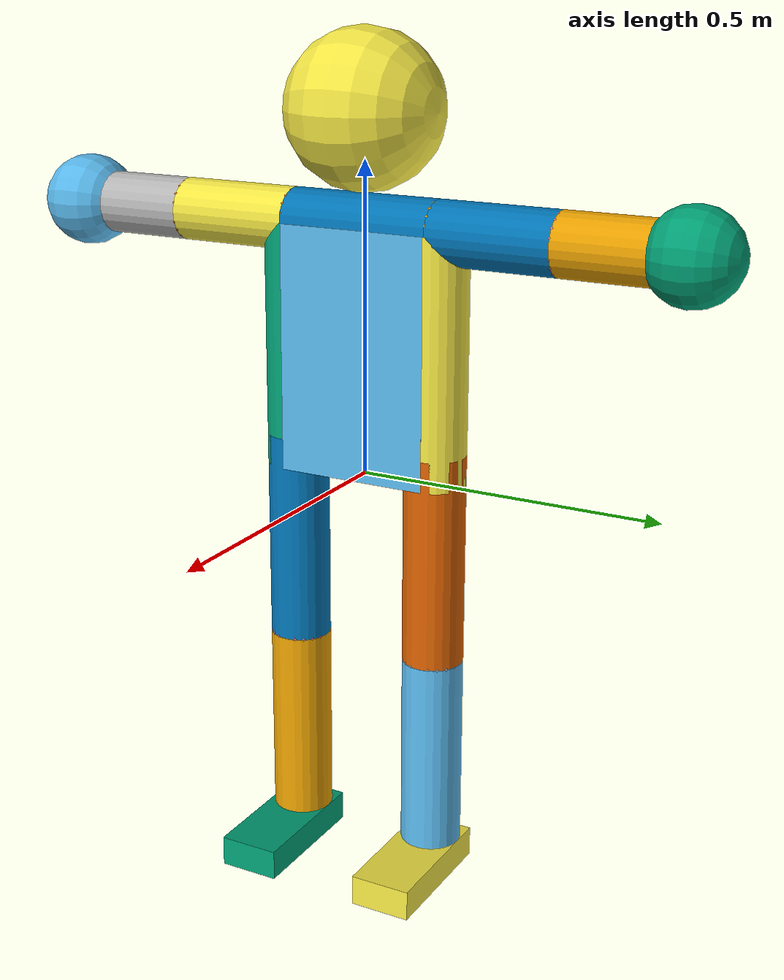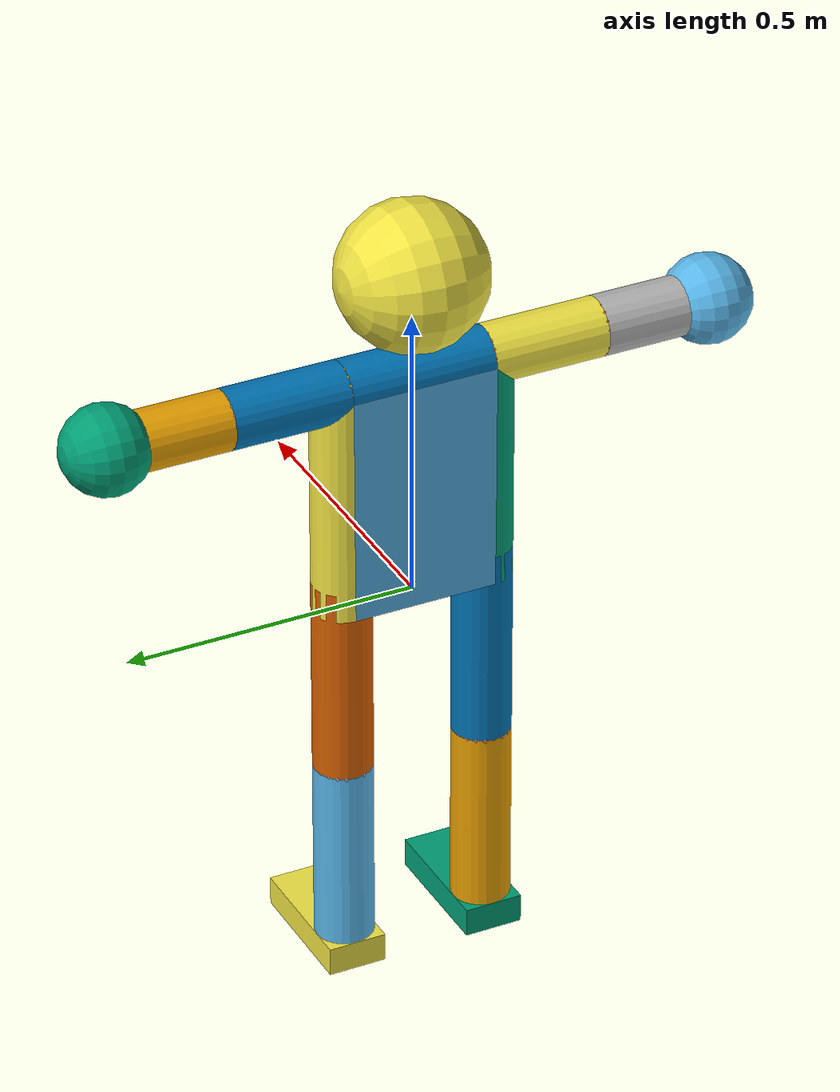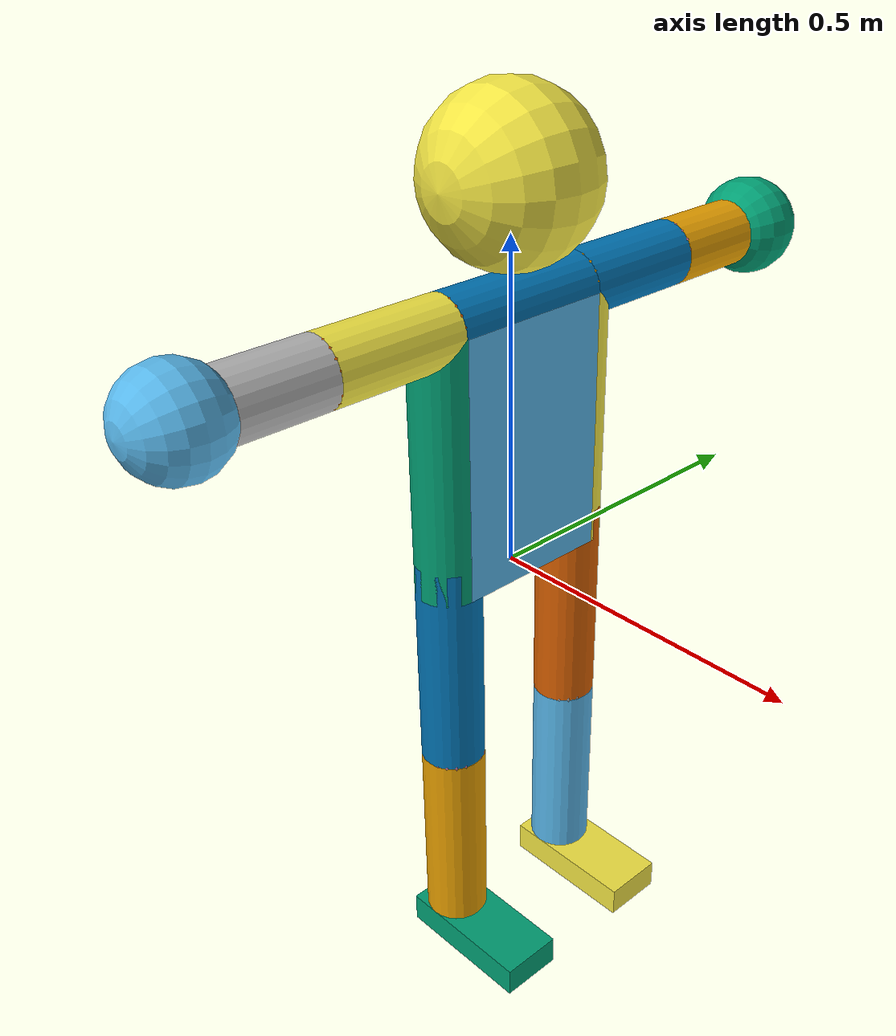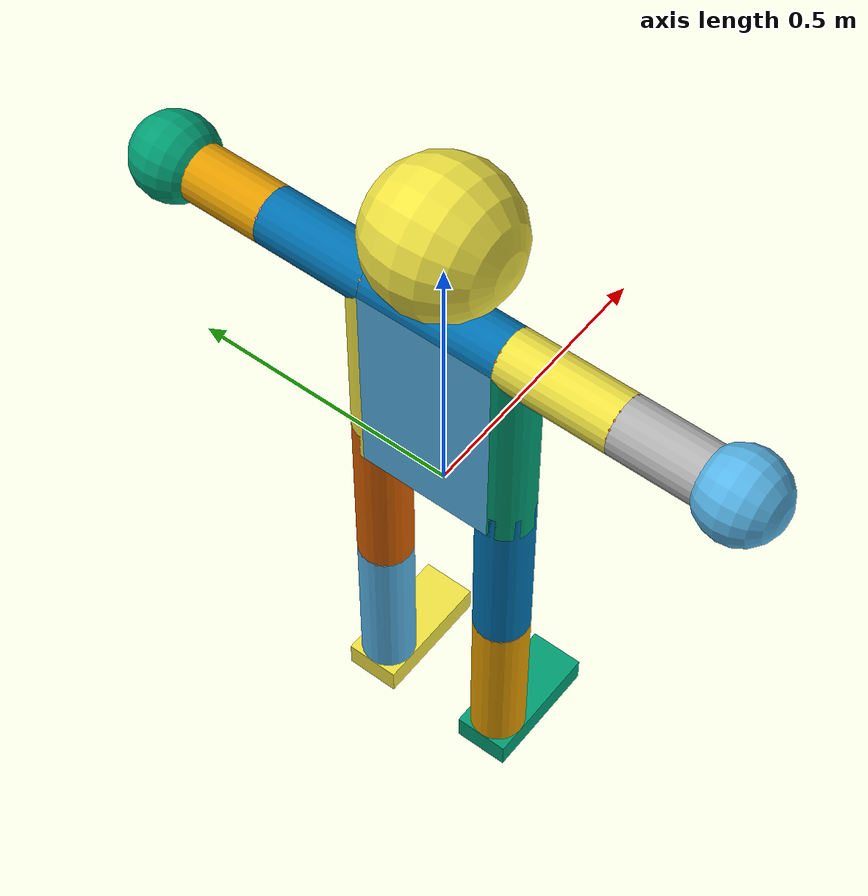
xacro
<?xml version="1.0"?>
<robot name="human" xmlns:xacro="http://www.ros.org/wiki/xacro">

  <xacro:arg name="joint_pose_file"       default="default_pose.xacro"/>
  <xacro:property name="joint_pose_file"  value="$(arg joint_pose_file)"/>
  <xacro:include filename="$(find model_human_skeleton)/urdf/${joint_pose_file}"/>

  <xacro:arg name="fixed_joint"         default="true"/>
  <xacro:property name="fixed_joint"    value="$(arg fixed_joint)"/>

  <xacro:arg name="gazebo_static"       default="true"/>
  <xacro:property name="gazebo_static"  value="$(arg gazebo_static)"/>

  <xacro:property name="model_mass" value="10"/>
  <xacro:property name="head_radius" value="0.125"/>
  <xacro:property name="body_trunk_height" value="0.4" />
  <xacro:property name="body_trunk_width" value="0.25" />
  <xacro:property name="body_trunk_depth" value="0.1"/>

  <xacro:property name="thight_length" value="0.35"/>
  <xacro:property name="calf_length" value="0.35"/>
  <xacro:property name="leg_radius" value="0.05"/>

  <xacro:property name="foot_height" value="0.05"/>
  <xacro:property name="foot_length" value="0.23"/>

  <xacro:property name="hand_diameter" value="0.15"/>
  <xacro:property name="arm_diameter" value="0.1"/>
  <xacro:property name="arm_length" value="0.2"/>
  <xacro:property name="forearm_length" value="0.2"/>

  <xacro:property name="deg_to_rad" value="0.01745329251994329577"/>

  <xacro:macro name="unit_inertia" params="mass:=1">
    <inertial>
      <origin xyz="0 0 0" rpy="0 0 0"/>
      <mass value="${mass}"/>
      <inertia ixx="${mass}" ixy="0" ixz="0" iyy="${mass}" iyz="0" izz="${mass}"/>
    </inertial>
  </xacro:macro>

  <xacro:if value="${gazebo_static}">
    <gazebo>
      <static>true</static>
    </gazebo>
  </xacro:if>

  <link name="human_base_link"/>

  <link name="body_link">
    <visual>
      <geometry>
        <box size="${body_trunk_height} ${body_trunk_width} ${body_trunk_depth}"/>
      </geometry>
    </visual>
    <collision>
      <origin xyz="0 0 0"/>
      <geometry>
        <box size="${body_trunk_height} ${body_trunk_width} ${body_trunk_depth}"/>
      </geometry>
    </collision>
    <xacro:unit_inertia mass="1"/>
  </link>
  <joint name="base_body_joint" type="fixed">
    <origin xyz="-0 0 ${body_trunk_height/2.0}" rpy="0 -1.57 0"/>
    <child link="body_link"/>
    <parent link="human_base_link"/>
  </joint>

  <link name="bodyright_link">
    <visual>
      <geometry>
        <cylinder radius="${body_trunk_depth/2}" length="${body_trunk_height}"/>
      </geometry>
    </visual>
    <collision>
      <origin xyz="0 0 0"/>
      <geometry>
        <cylinder radius="${body_trunk_depth/2}" length="${body_trunk_height}"/>
      </geometry>
    </collision>
    <xacro:unit_inertia mass="1"/>
  </link>
  <joint name="body_bodyright_joint" type="fixed">
      <origin xyz="0 -${body_trunk_width/2} 0" rpy="0 -1.57 0"/>
    <child link="bodyright_link"/>
    <parent link="body_link"/>
  </joint>

  <link name="bodyleft_link">
    <visual>
      <geometry>
        <cylinder radius="${body_trunk_depth/2}" length="${body_trunk_height}"/>
      </geometry>
    </visual>
    <collision>
      <origin xyz="0 0 0"/>
      <geometry>
        <cylinder radius="${body_trunk_depth/2}" length="${body_trunk_height}"/>
      </geometry>
    </collision>
    <xacro:unit_inertia mass="1"/>
  </link>
  <joint name="body_bodyleft_joint" type="fixed">
      <origin xyz="0 ${body_trunk_width/2} 0" rpy="0 -1.57 0"/>
    <child link="bodyleft_link"/>
    <parent link="body_link"/>
  </joint>

  <!-- thight right -->
  <link name="legright1_link">
    <visual>
      <origin xyz="0 0 ${thight_length/2}"/>
      <geometry>
        <cylinder radius="${leg_radius}" length="${thight_length}"/>
      </geometry>
    </visual>
    <collision>
      <origin xyz="0 0 ${thight_length/2}"/>
      <geometry>
       <cylinder radius="${leg_radius}" length="${thight_length}"/>
      </geometry>
    </collision>
    <xacro:unit_inertia mass="1"/>
  </link>
  <xacro:unless value="${fixed_joint}">
    <joint name="hip_right_joint" type="revolute">
      <origin xyz="0 ${leg_radius-body_trunk_depth/2} ${body_trunk_height/2-leg_radius}" rpy="0 ${hip_r_joint_angle} 0"/>
      <child link="legright1_link"/>
      <parent link="bodyright_link"/>
      <axis xyz="0.0 1.0 0.0"/>
      <limit lower="-1.57" upper="1.57" effort="1000.0" velocity="0.5"/>
    </joint>
  </xacro:unless>
  <xacro:if value="${fixed_joint}">
    <joint name="hip_right_joint" type="fixed">
      <origin xyz="0 ${leg_radius-body_trunk_depth/2} ${body_trunk_height/2-leg_radius}" rpy="0 ${hip_r_joint_angle} 0"/>
      <child link="legright1_link"/>
      <parent link="bodyright_link"/>
    </joint>
  </xacro:if>

  <!-- thight left -->
  <link name="legleft1_link">
    <visual>
      <origin xyz="0 0 ${thight_length/2}"/>
      <geometry>
        <cylinder radius="${leg_radius}" length="${thight_length}"/>
      </geometry>
    </visual>
    <collision>
      <origin xyz="0 0 ${thight_length/2}"/>
      <geometry>
       <cylinder radius="${leg_radius}" length="${thight_length}"/>
      </geometry>
    </collision>
    <xacro:unit_inertia mass="1"/>
  </link>
  <xacro:unless value="${fixed_joint}">
    <joint name="hip_left_joint" type="revolute">
      <origin xyz="0 ${-(leg_radius-body_trunk_depth/2)} ${body_trunk_height/2-leg_radius}" rpy="0 ${hip_l_joint_angle} 0"/>
      <child link="legleft1_link"/>
      <parent link="bodyleft_link"/>
      <axis xyz="0.0 1.0 0.0"/>
      <limit lower="-1.57" upper="1.57" effort="1000.0" velocity="0.5"/>
    </joint>
  </xacro:unless>
  <xacro:if value="${fixed_joint}">
    <joint name="hip_left_joint" type="fixed">
      <origin xyz="0 ${-(leg_radius-body_trunk_depth/2)} ${body_trunk_height/2-leg_radius}" rpy="0 ${hip_l_joint_angle} 0"/>
      <child link="legleft1_link"/>
      <parent link="bodyleft_link"/>
    </joint>
  </xacro:if>

  <!-- knee right -->
  <link name="legright2_link">
    <visual>
      <geometry>
        <sphere radius="${leg_radius}"/>
      </geometry>
    </visual>
    <collision>
      <geometry>
        <sphere radius="${leg_radius}"/>
      </geometry>
    </collision>
    <xacro:unit_inertia mass="1"/>
  </link>
  <xacro:unless value="${fixed_joint}">
    <joint name="knee_right_joint" type="revolute">
      <origin xyz="0 0 ${thight_length}" rpy="0 ${knee_r_joint_angle-1.57} 0"/>
      <child link="legright2_link"/>
      <parent link="legright1_link"/>
      <axis xyz="0.0 1.0 0.0"/>
      <limit lower="0" upper="${160 * deg_to_rad}" effort="1000.0" velocity="0.5"/>
    </joint>
  </xacro:unless>
  <xacro:if value="${fixed_joint}">
    <joint name="knee_right_joint" type="fixed">
      <origin xyz="0 0 ${thight_length}" rpy="0 ${knee_r_joint_angle-1.57} 0"/>
      <child link="legright2_link"/>
      <parent link="legright1_link"/>
    </joint>
  </xacro:if>

  <!-- knee left -->
  <link name="legleft2_link">
    <visual>
      <geometry>
        <sphere radius="${leg_radius}"/>
      </geometry>
    </visual>
    <collision>
      <geometry>
        <sphere radius="${leg_radius}"/>
      </geometry>
    </collision>
    <xacro:unit_inertia mass="1"/>
  </link>
  <xacro:unless value="${fixed_joint}">
    <joint name="knee_left_joint" type="revolute">
      <origin xyz="0 0 ${thight_length}" rpy="0 ${knee_l_joint_angle-1.57} 0"/>
      <child link="legleft2_link"/>
      <parent link="legleft1_link"/>
      <axis xyz="0.0 1.0 0.0"/>
      <limit lower="0" upper="${160 * deg_to_rad}" effort="1000.0" velocity="0.5"/>
    </joint>
  </xacro:unless>
  <xacro:if value="${fixed_joint}">
    <joint name="knee_left_joint" type="fixed">
      <origin xyz="0 0 ${thight_length}" rpy="0 ${knee_l_joint_angle-1.57} 0"/>
      <child link="legleft2_link"/>
      <parent link="legleft1_link"/>
    </joint>
  </xacro:if>

  <!-- calf right -->
  <link name="legright3_link">
    <visual>
      <geometry>
        <cylinder radius="${leg_radius}" length="${calf_length}"/>
      </geometry>
    </visual>
    <collision>
      <origin xyz="0 0 0"/>
      <geometry>
        <cylinder radius="${leg_radius}" length="${calf_length}"/>
      </geometry>
    </collision>
    <xacro:unit_inertia mass="1"/>
  </link>
  <joint name="calf_right_joint" type="fixed">
    <origin xyz="${calf_length/2} 0 0" rpy="0 -1.57 0"/>
    <child link="legright3_link"/>
    <parent link="legright2_link"/>
  </joint>

  <!-- calf left -->
  <link name="legleft3_link">
    <visual>
      <geometry>
        <cylinder radius="${leg_radius}" length="${calf_length}"/>
      </geometry>
    </visual>
    <collision>
      <origin xyz="0 0 0"/>
      <geometry>
        <cylinder radius="${leg_radius}" length="${calf_length}"/>
      </geometry>
    </collision>
    <xacro:unit_inertia mass="1"/>
  </link>
  <joint name="calf_left_joint" type="fixed">
    <origin xyz="${calf_length/2} 0 0" rpy="0 -1.57 0"/>
    <child link="legleft3_link"/>
    <parent link="legleft2_link"/>
  </joint>

  <!-- foot right -->
  <link name="footright_link">
    <visual>
      <origin xyz="${foot_length/2-leg_radius} 0 0"/>
      <geometry>
        <box size="${foot_length} ${2*leg_radius} ${foot_height}"/>
      </geometry>
    </visual>
    <collision>
      <origin xyz="${foot_length/2-leg_radius} 0 0"/>
      <geometry>
        <box size="${foot_length} ${2*leg_radius} ${foot_height}"/>
      </geometry>
    </collision>
    <xacro:unit_inertia mass="1"/>
  </link>
  <joint name="ankle_right_joint" type="fixed">
    <origin xyz="0 0 -${calf_length*0.5}" rpy="0 0 0"/>
    <child link="footright_link"/>
    <parent link="legright3_link"/>
  </joint>

  <!-- foot left -->
  <link name="footleft_link">
    <visual>
      <origin xyz="${foot_length/2-leg_radius} 0 0"/>
      <geometry>
        <box size="${foot_length} ${2*leg_radius} ${foot_height}"/>
      </geometry>
    </visual>
    <collision>
      <origin xyz="${foot_length/2-leg_radius} 0 0"/>
      <geometry>
        <box size="${foot_length} ${2*leg_radius} ${foot_height}"/>
      </geometry>
    </collision>
    <xacro:unit_inertia mass="1"/>
  </link>
  <joint name="ankle_left_joint" type="fixed">
    <origin xyz="0 0 -${calf_length*0.5}" rpy="0 0 0"/>
    <child link="footleft_link"/>
    <parent link="legleft3_link"/>
  </joint>

  <!-- chest -->
  <link name="chest_link">
    <visual>
      <geometry>
        <cylinder radius="${body_trunk_depth/2}" length="${body_trunk_width}"/>
      </geometry>
    </visual>
    <collision>
      <geometry>
        <cylinder radius="${body_trunk_depth/2}" length="${body_trunk_width}"/>
      </geometry>
    </collision>
    <xacro:unit_inertia mass="1"/>
  </link>
  <joint name="body_chest_joint" type="fixed">
    <origin xyz="${body_trunk_height/2} 0 0" rpy="-1.57 0 0"/>
    <child link="chest_link"/>
    <parent link="body_link"/>
  </joint>

  <!-- shoulder right -->
  <link name="shoulderright_link">
    <visual>
      <geometry>
        <sphere radius="${arm_diameter/2}"/>
      </geometry>
    </visual>
    <collision>
      <geometry>
        <sphere radius="${arm_diameter/2}"/>
      </geometry>
    </collision>
    <xacro:unit_inertia mass="1"/>
  </link>
  <xacro:unless value="${fixed_joint}">
    <joint name="shoulder_right_flexion_joint" type="revolute">
      <origin xyz="0 0 ${-body_trunk_width/2}" rpy="${shoulder_r_flexion_angle} 0 0"/>
      <child link="shoulderright_link"/>
      <parent link="chest_link"/>
      <axis xyz="1 0 0"/>
      <limit lower="${-90 * deg_to_rad}" upper="${135 * deg_to_rad}" effort="1000.0" velocity="0.5"/>
    </joint>
  </xacro:unless>
  <xacro:if value="${fixed_joint}">
    <joint name="shoulder_right_flexion_joint" type="fixed">
      <origin xyz="0 0 ${-body_trunk_width/2}" rpy="${shoulder_r_flexion_angle} 0 0"/>
      <child link="shoulderright_link"/>
      <parent link="chest_link"/>
    </joint>
  </xacro:if>

  <link name="shoulderright_link2">
    <xacro:unit_inertia mass="1"/>
  </link>
  <xacro:unless value="${fixed_joint}">
    <joint name="shoulder_right_abduction_joint" type="revolute">
      <origin xyz="0 0 0" rpy="0 ${shoulder_r_abduction_angle} 0"/>
      <child link="shoulderright_link2"/>
      <parent link="shoulderright_link"/>
      <axis xyz="0 1 0"/>
      <limit lower="${-90 * deg_to_rad}" upper="${90 * deg_to_rad}" effort="1000.0" velocity="0.5"/>
    </joint>
  </xacro:unless>
  <xacro:if value="${fixed_joint}">
    <joint name="shoulder_right_abduction_joint" type="fixed">
      <origin xyz="0 0 0" rpy="0 ${shoulder_r_abduction_angle} 0"/>
      <child link="shoulderright_link2"/>
      <parent link="shoulderright_link"/>
    </joint>
  </xacro:if>

  <link name="shoulderright_link3">
    <xacro:unit_inertia mass="1"/>
  </link>
  <xacro:unless value="${fixed_joint}">
    <joint name="shoulder_right_rotation_joint" type="revolute">
      <origin xyz="0 0 0" rpy="0 0 ${shoulder_r_rotation_angle}"/>
      <child link="shoulderright_link3"/>
      <parent link="shoulderright_link2"/>
      <axis xyz="0 0 1"/>
      <limit lower="${-180 * deg_to_rad}" upper="${90 * deg_to_rad}" effort="1000.0" velocity="0.5"/>
    </joint>
  </xacro:unless>
  <xacro:if value="${fixed_joint}">
    <joint name="shoulder_right_rotation_joint" type="fixed">
      <origin xyz="0 0 0" rpy="0 0 ${shoulder_r_rotation_angle}"/>
      <child link="shoulderright_link3"/>
      <parent link="shoulderright_link2"/>
    </joint>
  </xacro:if>

  <!-- shoulder left -->
  <link name="shoulderleft_link">
    <visual>
      <geometry>
        <sphere radius="${arm_diameter/2}"/>
      </geometry>
    </visual>
    <collision>
      <geometry>
        <sphere radius="${arm_diameter/2}"/>
      </geometry>
    </collision>
    <xacro:unit_inertia mass="1"/>
  </link>
  <xacro:unless value="${fixed_joint}">
    <joint name="shoulder_left_flexion_joint" type="revolute">
      <origin xyz="0 0 ${body_trunk_width/2}" rpy="${shoulder_l_flexion_angle} 0 ${180*deg_to_rad}"/>
      <child link="shoulderleft_link"/>
      <parent link="chest_link"/>
      <axis xyz="1 0 0"/>
      <limit lower="${-90 * deg_to_rad}" upper="${135 * deg_to_rad}" effort="1000.0" velocity="0.5"/>
    </joint>
  </xacro:unless>
  <xacro:if value="${fixed_joint}">
    <joint name="shoulder_left_flexion_joint" type="fixed">
      <origin xyz="0 0 ${body_trunk_width/2}" rpy="${shoulder_l_flexion_angle} 0 ${180*deg_to_rad}"/>
      <child link="shoulderleft_link"/>
      <parent link="chest_link"/>
    </joint>
  </xacro:if>

  <link name="shoulderleft_link2">
    <xacro:unit_inertia mass="1"/>
  </link>
  <xacro:unless value="${fixed_joint}">
    <joint name="shoulder_left_abduction_joint" type="revolute">
      <origin xyz="0 0 0" rpy="0 ${shoulder_l_abduction_angle} 0"/>
      <child link="shoulderleft_link2"/>
      <parent link="shoulderleft_link"/>
      <axis xyz="0 1 0"/>
      <limit lower="${-90 * deg_to_rad}" upper="${90 * deg_to_rad}" effort="1000.0" velocity="0.5"/>
    </joint>
  </xacro:unless>
  <xacro:if value="${fixed_joint}">
    <joint name="shoulder_left_abduction_joint" type="fixed">
      <origin xyz="0 0 0" rpy="0 ${shoulder_l_abduction_angle} 0"/>
      <child link="shoulderleft_link2"/>
      <parent link="shoulderleft_link"/>
    </joint>
  </xacro:if>

  <link name="shoulderleft_link3">
    <xacro:unit_inertia mass="1"/>
  </link>
  <xacro:unless value="${fixed_joint}">
    <joint name="shoulder_left_rotation_joint" type="revolute">
      <origin xyz="0 0 0" rpy="0 0 ${shoulder_l_rotation_angle}"/>
      <child link="shoulderleft_link3"/>
      <parent link="shoulderleft_link2"/>
      <axis xyz="0 0 1"/>
      <limit lower="${-180 * deg_to_rad}" upper="${90 * deg_to_rad}" effort="1000.0" velocity="0.5"/>
    </joint>
  </xacro:unless>
  <xacro:if value="${fixed_joint}">
    <joint name="shoulder_left_rotation_joint" type="fixed">
      <origin xyz="0 0 0" rpy="0 0 ${shoulder_l_rotation_angle}"/>
      <child link="shoulderleft_link3"/>
      <parent link="shoulderleft_link2"/>
    </joint>
  </xacro:if>

  <!-- arm right -->
  <link name="armright1_link">
    <visual>
      <origin xyz="0 0 ${-arm_length/2}"/>
      <geometry>
        <cylinder radius="${arm_diameter/2}" length="${arm_length}"/>
      </geometry>
    </visual>
    <collision>
      <origin xyz="0 0 ${-arm_length/2}"/>
      <geometry>
        <cylinder radius="${arm_diameter/2}" length="${arm_length}"/>
      </geometry>
    </collision>
    <xacro:unit_inertia mass="1"/>
  </link>
  <joint name="arm_right_joint" type="fixed">
    <origin xyz="0 0 0" rpy="0 0 0"/>
    <child link="armright1_link"/>
    <parent link="shoulderright_link3"/>
  </joint>

  <!-- arm left -->
  <link name="armleft1_link">
    <visual>
      <origin xyz="0 0 ${-arm_length/2}"/>
      <geometry>
        <cylinder radius="${arm_diameter/2}" length="${arm_length}"/>
      </geometry>
    </visual>
    <collision>
      <origin xyz="0 0 ${-arm_length/2}"/>
      <geometry>
        <cylinder radius="${arm_diameter/2}" length="${arm_length}"/>
      </geometry>
    </collision>
    <xacro:unit_inertia mass="1"/>
  </link>
  <joint name="arm_left_joint" type="fixed">
    <origin xyz="0 0 0" rpy="0 ${180*deg_to_rad} ${180*deg_to_rad}"/>
    <child link="armleft1_link"/>
    <parent link="shoulderleft_link3"/>
  </joint>

  <!-- elbow right -->
  <link name="armright2_link">
    <visual>
      <geometry>
        <sphere radius="${arm_diameter/2}"/>
      </geometry>
    </visual>
    <collision>
      <geometry>
        <sphere radius="${arm_diameter/2}"/>
      </geometry>
    </collision>
    <xacro:unit_inertia mass="1"/>
  </link>
  <xacro:unless value="${fixed_joint}">
    <joint name="elbow_right_joint" type="revolute">
      <origin xyz="0 0 ${-arm_length}" rpy="${elbow_r_angle} 0 0"/>
      <child link="armright2_link"/>
      <parent link="armright1_link"/>
      <axis xyz="1 0 0"/>
      <limit lower="0" upper="${160 * deg_to_rad}" effort="1000.0" velocity="0.5"/>
    </joint>
  </xacro:unless>
  <xacro:if value="${fixed_joint}">
    <joint name="elbow_right_joint" type="fixed">
      <origin xyz="0 0 ${-arm_length}" rpy="${elbow_r_angle} 0 0"/>
      <child link="armright2_link"/>
      <parent link="armright1_link"/>
    </joint>
  </xacro:if>

  <!-- elbow left -->
  <link name="armleft2_link">
    <visual>
      <geometry>
        <sphere radius="${arm_diameter/2}"/>
      </geometry>
    </visual>
    <collision>
      <geometry>
        <sphere radius="${arm_diameter/2}"/>
      </geometry>
    </collision>
    <xacro:unit_inertia mass="1"/>
  </link>
  <xacro:unless value="${fixed_joint}">
    <joint name="elbow_left_joint" type="revolute">
      <origin xyz="0 0 ${-arm_length}" rpy="${elbow_l_angle} 0 0"/>
      <child link="armleft2_link"/>
      <parent link="armleft1_link"/>
      <axis xyz="1 0 0"/>
      <limit lower="0" upper="${160 * deg_to_rad}" effort="1000.0" velocity="0.5"/>
    </joint>
  </xacro:unless>
  <xacro:if value="${fixed_joint}">
    <joint name="elbow_left_joint" type="fixed">
      <origin xyz="0 0 ${-arm_length}" rpy="${elbow_l_angle} 0 0"/>
      <child link="armleft2_link"/>
      <parent link="armleft1_link"/>
    </joint>
  </xacro:if>

  <!-- forearm right -->
  <link name="armright3_link">
    <visual>
      <geometry>
        <cylinder radius="${arm_diameter/2}" length="${forearm_length}"/>
      </geometry>
    </visual>
    <collision>
      <geometry>
        <cylinder radius="${arm_diameter/2}" length="${forearm_length}"/>
      </geometry>
    </collision>
    <xacro:unit_inertia mass="1"/>
  </link>
  <joint name="forearm_right_joint" type="fixed">
    <origin xyz="0 0 ${-forearm_length/2}" rpy="0 0 0"/>
    <child link="armright3_link"/>
    <parent link="armright2_link"/>
  </joint>

  <!-- forearm left -->
  <link name="armleft3_link">
    <visual>
      <geometry>
        <cylinder radius="${arm_diameter/2}" length="${forearm_length}"/>
      </geometry>
    </visual>
    <collision>
      <geometry>
        <cylinder radius="${arm_diameter/2}" length="${forearm_length}"/>
      </geometry>
    </collision>
    <xacro:unit_inertia mass="1"/>
  </link>
  <joint name="forearm_left_joint" type="fixed">
    <origin xyz="0 0 ${-forearm_length/2}" rpy="0 0 0"/>
    <child link="armleft3_link"/>
    <parent link="armleft2_link"/>
  </joint>

  <!-- hand right -->
  <link name="handright_link">
    <visual>
      <geometry>
        <sphere radius="${hand_diameter/2}"/>
      </geometry>
    </visual>
    <collision>
      <geometry>
        <sphere radius="${hand_diameter/2}"/>
      </geometry>
    </collision>
    <xacro:unit_inertia mass="1"/>
  </link>
  <joint name="wrist_right_joint" type="fixed">
      <origin xyz="0 0 ${-forearm_length/2}" rpy="0 0 0"/>
    <child link="handright_link"/>
    <parent link="armright3_link"/>
  </joint>

  <!-- hand left -->
  <link name="handleft_link">
    <visual>
      <geometry>
        <sphere radius="${hand_diameter/2}"/>
      </geometry>
    </visual>
    <collision>
      <geometry>
        <sphere radius="${hand_diameter/2}"/>
      </geometry>
    </collision>
    <xacro:unit_inertia mass="1"/>
  </link>
  <joint name="wrist_left_joint" type="fixed">
      <origin xyz="0 0 ${-forearm_length/2}" rpy="0 0 0"/>
    <child link="handleft_link"/>
    <parent link="armleft3_link"/>
  </joint>

  <!-- head -->
  <link name="head_link">
    <visual>
      <geometry>
        <sphere radius="${head_radius}"/>
      </geometry>
    </visual>
    <collision>
      <origin xyz="0 0 0"/>
      <geometry>
        <sphere radius="${head_radius}"/>
      </geometry>
    </collision>
    <xacro:unit_inertia mass="1"/>
  </link>
  <xacro:unless value="${fixed_joint}">
    <joint name="chest_head_joint" type="revolute">
      <origin xyz="${head_radius+body_trunk_depth/2} 0 0" rpy="0 0 0"/>
      <child link="head_link"/>
      <parent link="chest_link"/>
      <axis xyz="1 0 0"/>
      <limit lower="${-90 * deg_to_rad}" upper="${90 * deg_to_rad}" effort="1000.0" velocity="0.5"/>
    </joint>
  </xacro:unless>
  <xacro:if value="${fixed_joint}">
    <joint name="chest_head_joint" type="fixed">
      <origin xyz="${head_radius+body_trunk_depth/2} 0 0" rpy="0 0 0"/>
      <child link="head_link"/>
      <parent link="chest_link"/>
    </joint>
  </xacro:if>

</robot>

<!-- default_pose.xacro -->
<robot xmlns:xacro="https://www.ros.org/wiki/xacro">

	<xacro:property name="hip_r_joint_angle" value="0"/>
    <xacro:property name="hip_l_joint_angle" value="0"/>

    <xacro:property name="knee_r_joint_angle" value="0"/>
    <xacro:property name="knee_l_joint_angle" value="0"/>

    <xacro:property name="shoulder_r_flexion_angle" value="0"/>
    <xacro:property name="shoulder_l_flexion_angle" value="0"/>

    <xacro:property name="shoulder_r_abduction_angle" value="0"/>
    <xacro:property name="shoulder_l_abduction_angle" value="0"/>

    <xacro:property name="shoulder_r_rotation_angle" value="0"/>
    <xacro:property name="shoulder_l_rotation_angle" value="0"/>

    <xacro:property name="elbow_r_angle" value="0"/>
    <xacro:property name="elbow_l_angle" value="0"/>

</robot>
